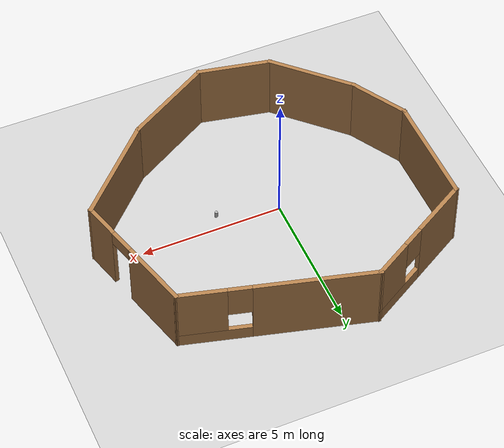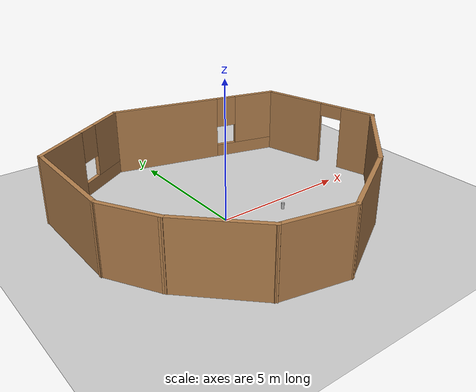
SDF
<sdf version="1.7">
 <world name="default">
  <light name="sun" type="directional">
   <pose>0 0 10 0 -0 0</pose>
   <diffuse>0.8 0.8 0.8 1</diffuse>
   <specular>0.2 0.2 0.2 1</specular>
   <attenuation>
    <range>1000</range>
    <constant>0.9</constant>
    <linear>0.01</linear>
    <quadratic>0.001</quadratic>
   </attenuation>
   <direction>-0.5 0.1 -0.9</direction>
   <spot><inner_angle>0</inner_angle><outer_angle>0</outer_angle><falloff>0</falloff></spot>
  </light>
  <model name="ground_plane">
   <static>1</static>
   <link name="link">
    <collision name="collision">
     <geometry><plane><normal>0 0 1</normal><size>100 100</size></plane></geometry>
     <surface>
      <contact><collide_bitmask>65535</collide_bitmask></contact>
      <friction><ode><mu>100</mu><mu2>50</mu2></ode></friction>
     </surface>
    </collision>
    <visual name="visual">
     <cast_shadows>0</cast_shadows>
     <geometry><plane><normal>0 0 1</normal><size>100 100</size></plane></geometry>
     <material>
      <script><uri>file://media/materials/scripts/gazebo.material</uri><name>Gazebo/Grey</name></script>
     </material>
    </visual>
   </link>
  </model>
  <gravity>0 0 -9.8</gravity>
  <magnetic_field>6e-06 2.3e-05 -4.2e-05</magnetic_field>
  <atmosphere type="adiabatic"/>
  <physics type="ode">
   <max_step_size>0.001</max_step_size>
   <real_time_factor>1</real_time_factor>
   <real_time_update_rate>1000</real_time_update_rate>
  </physics>
  <scene><ambient>0.4 0.4 0.4 1</ambient><background>0.7 0.7 0.7 1</background><shadows>1</shadows></scene>
  <spherical_coordinates>
   <surface_model>EARTH_WGS84</surface_model>
   <latitude_deg>0</latitude_deg>
   <longitude_deg>0</longitude_deg>
   <elevation>0</elevation>
   <heading_deg>0</heading_deg>
  </spherical_coordinates>
  <model name="beer">
   <link name="link">
    <pose>0 0 0.115 0 -0 0</pose>
    <inertial>
     <mass>0.39</mass>
     <inertia><ixx>0.00058</ixx><ixy>0</ixy><ixz>0</ixz><iyy>0.00058</iyy><iyz>0</iyz><izz>0.00019</izz></inertia>
    </inertial>
    <collision name="collision">
     <geometry><cylinder><radius>0.055</radius><length>0.23</length></cylinder></geometry>
    </collision>
    <visual name="visual">
     <geometry><cylinder><radius>0.055</radius><length>0.23</length></cylinder></geometry>
     <material>
      <script>
       <uri>model://beer/materials/scripts</uri>
       <uri>model://beer/materials/textures</uri>
       <name>Beer/Diffuse</name>
      </script>
     </material>
    </visual>
   </link>
   <pose>2.10775 -0.556984 -7e-06 -1e-06 -0 -4e-06</pose>
  </model>
  <model name="room">
   <pose>0.86622 0.381272 0 0 -0 0</pose>
   <link name="Wall_0">
    <collision name="Wall_0_Collision">
     <geometry><box><size>3.25 0.15 2.5</size></box></geometry>
     <pose>0 0 1.25 0 -0 0</pose>
    </collision>
    <visual name="Wall_0_Visual">
     <pose>0 0 1.25 0 -0 0</pose>
     <geometry><box><size>3.25 0.15 2.5</size></box></geometry>
     <material>
      <script><uri>file://media/materials/scripts/gazebo.material</uri><name>Gazebo/Wood</name></script>
      <ambient>1 1 1 1</ambient>
     </material>
     <meta><layer>0</layer></meta>
    </visual>
    <pose>-3.52224 -3.66526 0 0 -0 2.35619</pose>
   </link>
   <link name="Wall_1">
    <collision name="Wall_1_Collision">
     <geometry><box><size>2.25 0.15 2.5</size></box></geometry>
     <pose>0 0 1.25 0 -0 0</pose>
    </collision>
    <visual name="Wall_1_Visual">
     <pose>0 0 1.25 0 -0 0</pose>
     <geometry><box><size>2.25 0.15 2.5</size></box></geometry>
     <material>
      <script><uri>file://media/materials/scripts/gazebo.material</uri><name>Gazebo/Wood</name></script>
      <ambient>1 1 1 1</ambient>
     </material>
     <meta><layer>0</layer></meta>
    </visual>
    <pose>-5.14325 -1.65991 0 0 -0 2.0944</pose>
   </link>
   <link name="Wall_2">
    <collision name="Wall_2_Collision">
     <geometry><box><size>4 0.15 2.5</size></box></geometry>
     <pose>0 0 1.25 0 -0 0</pose>
    </collision>
    <visual name="Wall_2_Visual">
     <pose>0 0 1.25 0 -0 0</pose>
     <geometry><box><size>4 0.15 2.5</size></box></geometry>
     <material>
      <script><uri>file://media/materials/scripts/gazebo.material</uri><name>Gazebo/Wood</name></script>
      <ambient>1 1 1 1</ambient>
     </material>
     <meta><layer>0</layer></meta>
    </visual>
    <pose>-5.66825 1.17441 0 0 -0 1.5708</pose>
   </link>
   <link name="Wall_3">
    <pose>-3.78465 4.18691 0 0 -0 0.523599</pose>
    <visual name="Wall_3_Visual_0">
     <pose>-1.13876 0 1.25 0 -0 0</pose>
     <geometry><box><size>2.22248 0.15 2.5</size></box></geometry>
     <material>
      <script><uri>file://media/materials/scripts/gazebo.material</uri><name>Gazebo/Wood</name></script>
      <ambient>1 1 1 1</ambient>
     </material>
     <meta><layer>0</layer></meta>
    </visual>
    <collision name="Wall_3_Collision_0">
     <geometry><box><size>2.22248 0.15 2.5</size></box></geometry>
     <pose>-1.13876 0 1.25 0 -0 0</pose>
    </collision>
    <visual name="Wall_3_Visual_1">
     <pose>1.11124 0 0.25 0 -0 0</pose>
     <geometry><box><size>2.27752 0.15 0.5</size></box></geometry>
     <material>
      <script><uri>file://media/materials/scripts/gazebo.material</uri><name>Gazebo/Wood</name></script>
      <ambient>1 1 1 1</ambient>
     </material>
     <meta><layer>0</layer></meta>
    </visual>
    <collision name="Wall_3_Collision_1">
     <geometry><box><size>2.27752 0.15 0.5</size></box></geometry>
     <pose>1.11124 0 0.25 0 -0 0</pose>
    </collision>
    <visual name="Wall_3_Visual_2">
     <pose>1.51124 0 1.5 0 -0 0</pose>
     <geometry><box><size>1.47752 0.15 2</size></box></geometry>
     <material>
      <script><uri>file://media/materials/scripts/gazebo.material</uri><name>Gazebo/Wood</name></script>
      <ambient>1 1 1 1</ambient>
     </material>
     <meta><layer>0</layer></meta>
    </visual>
    <collision name="Wall_3_Collision_2">
     <geometry><box><size>1.47752 0.15 2</size></box></geometry>
     <pose>1.51124 0 1.5 0 -0 0</pose>
    </collision>
    <visual name="Wall_3_Visual_3">
     <pose>0.372478 0 1.9 0 -0 0</pose>
     <geometry><box><size>0.8 0.15 1.2</size></box></geometry>
     <material>
      <script><uri>file://media/materials/scripts/gazebo.material</uri><name>Gazebo/Wood</name></script>
      <ambient>1 1 1 1</ambient>
     </material>
     <meta><layer>0</layer></meta>
    </visual>
    <collision name="Wall_3_Collision_3">
     <geometry><box><size>0.8 0.15 1.2</size></box></geometry>
     <pose>0.372478 0 1.9 0 -0 0</pose>
    </collision>
   </link>
   <link name="Wall_4">
    <pose>1.28651 4.42031 0 0 -0 -0.261799</pose>
    <visual name="Wall_4_Visual_0">
     <pose>-1.26022 0 1.25 0 -0 0</pose>
     <geometry><box><size>4.22957 0.15 2.5</size></box></geometry>
     <material>
      <script><uri>file://media/materials/scripts/gazebo.material</uri><name>Gazebo/Wood</name></script>
      <ambient>1 1 1 1</ambient>
     </material>
     <meta><layer>0</layer></meta>
    </visual>
    <collision name="Wall_4_Collision_0">
     <geometry><box><size>4.22957 0.15 2.5</size></box></geometry>
     <pose>-1.26022 0 1.25 0 -0 0</pose>
    </collision>
    <visual name="Wall_4_Visual_1">
     <pose>2.11478 0 0.25 0 -0 0</pose>
     <geometry><box><size>2.52043 0.15 0.5</size></box></geometry>
     <material>
      <script><uri>file://media/materials/scripts/gazebo.material</uri><name>Gazebo/Wood</name></script>
      <ambient>1 1 1 1</ambient>
     </material>
     <meta><layer>0</layer></meta>
    </visual>
    <collision name="Wall_4_Collision_1">
     <geometry><box><size>2.52043 0.15 0.5</size></box></geometry>
     <pose>2.11478 0 0.25 0 -0 0</pose>
    </collision>
    <visual name="Wall_4_Visual_2">
     <pose>2.51478 0 1.5 0 -0 0</pose>
     <geometry><box><size>1.72043 0.15 2</size></box></geometry>
     <material>
      <script><uri>file://media/materials/scripts/gazebo.material</uri><name>Gazebo/Wood</name></script>
      <ambient>1 1 1 1</ambient>
     </material>
     <meta><layer>0</layer></meta>
    </visual>
    <collision name="Wall_4_Collision_2">
     <geometry><box><size>1.72043 0.15 2</size></box></geometry>
     <pose>2.51478 0 1.5 0 -0 0</pose>
    </collision>
    <visual name="Wall_4_Visual_3">
     <pose>1.25456 0 1.9 0 -0 0</pose>
     <geometry><box><size>0.8 0.15 1.2</size></box></geometry>
     <material>
      <script><uri>file://media/materials/scripts/gazebo.material</uri><name>Gazebo/Wood</name></script>
      <ambient>1 1 1 1</ambient>
     </material>
     <meta><layer>0</layer></meta>
    </visual>
    <collision name="Wall_4_Collision_3">
     <geometry><box><size>0.8 0.15 1.2</size></box></geometry>
     <pose>1.25456 0 1.9 0 -0 0</pose>
    </collision>
   </link>
   <link name="Wall_5">
    <pose>5.06935 1.34458 0 0 -0 -1.309</pose>
    <visual name="Wall_5_Visual_0">
     <pose>-1.11868 0 1.25 0 -0 0</pose>
     <geometry><box><size>2.51265 0.15 2.5</size></box></geometry>
     <material>
      <script><uri>file://media/materials/scripts/gazebo.material</uri><name>Gazebo/Wood</name></script>
      <ambient>1 1 1 1</ambient>
     </material>
     <meta><layer>0</layer></meta>
    </visual>
    <collision name="Wall_5_Collision_0">
     <geometry><box><size>2.51265 0.15 2.5</size></box></geometry>
     <pose>-1.11868 0 1.25 0 -0 0</pose>
    </collision>
    <visual name="Wall_5_Visual_1">
     <pose>1.70632 0 1.25 0 -0 0</pose>
     <geometry><box><size>1.33735 0.15 2.5</size></box></geometry>
     <material>
      <script><uri>file://media/materials/scripts/gazebo.material</uri><name>Gazebo/Wood</name></script>
      <ambient>1 1 1 1</ambient>
     </material>
     <meta><layer>0</layer></meta>
    </visual>
    <collision name="Wall_5_Collision_1">
     <geometry><box><size>1.33735 0.15 2.5</size></box></geometry>
     <pose>1.70632 0 1.25 0 -0 0</pose>
    </collision>
    <visual name="Wall_5_Visual_2">
     <pose>0.587646 0 2.25 0 -0 0</pose>
     <geometry><box><size>0.9 0.15 0.5</size></box></geometry>
     <material>
      <script><uri>file://media/materials/scripts/gazebo.material</uri><name>Gazebo/Wood</name></script>
      <ambient>1 1 1 1</ambient>
     </material>
     <meta><layer>0</layer></meta>
    </visual>
    <collision name="Wall_5_Collision_2">
     <geometry><box><size>0.9 0.15 0.5</size></box></geometry>
     <pose>0.587646 0 2.25 0 -0 0</pose>
    </collision>
   </link>
   <link name="Wall_6">
    <collision name="Wall_6_Collision">
     <geometry><box><size>4 0.15 2.5</size></box></geometry>
     <pose>0 0 1.25 0 -0 0</pose>
    </collision>
    <visual name="Wall_6_Visual">
     <pose>0 0 1.25 0 -0 0</pose>
     <geometry><box><size>4 0.15 2.5</size></box></geometry>
     <material>
      <script><uri>file://media/materials/scripts/gazebo.material</uri><name>Gazebo/Wood</name></script>
      <ambient>1 1 1 1</ambient>
     </material>
     <meta><layer>0</layer></meta>
    </visual>
    <pose>4.30346 -2.23823 0 0 -0 -2.35619</pose>
   </link>
   <link name="Wall_7">
    <collision name="Wall_7_Collision">
     <geometry><box><size>3.5 0.15 2.5</size></box></geometry>
     <pose>0 0 1.25 0 -0 0</pose>
    </collision>
    <visual name="Wall_7_Visual">
     <pose>0 0 1.25 0 -0 0</pose>
     <geometry><box><size>3.5 0.15 2.5</size></box></geometry>
     <material>
      <script><uri>file://media/materials/scripts/gazebo.material</uri><name>Gazebo/Wood</name></script>
      <ambient>1 1 1 1</ambient>
     </material>
     <meta><layer>0</layer></meta>
    </visual>
    <pose>1.49168 -4.43691 0 0 -0 -2.61799</pose>
   </link>
   <link name="Wall_8">
    <collision name="Wall_8_Collision">
     <geometry><box><size>2.67011 0.15 2.5</size></box></geometry>
     <pose>0 0 1.25 0 -0 0</pose>
    </collision>
    <visual name="Wall_8_Visual">
     <pose>0 0 1.25 0 -0 0</pose>
     <geometry><box><size>2.67011 0.15 2.5</size></box></geometry>
     <material>
      <script><uri>file://media/materials/scripts/gazebo.material</uri><name>Gazebo/Wood</name></script>
      <ambient>1 1 1 1</ambient>
     </material>
     <meta><layer>0</layer></meta>
    </visual>
    <pose>-1.19257 -5.01784 0 0 -0 2.93654</pose>
   </link>
   <static>1</static>
  </model>
 </world>
</sdf>
